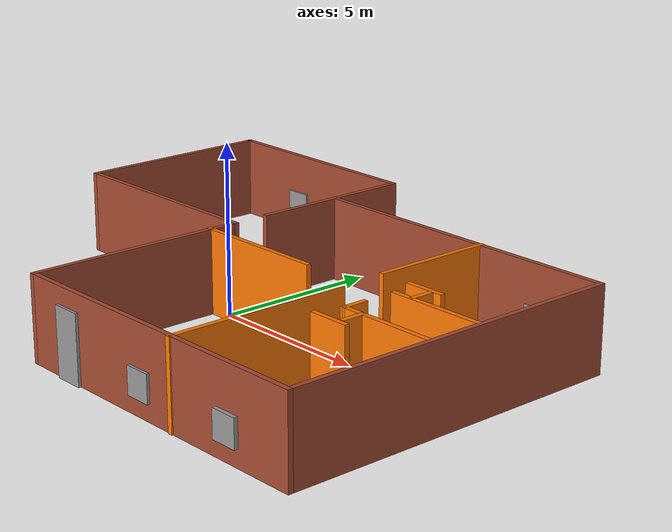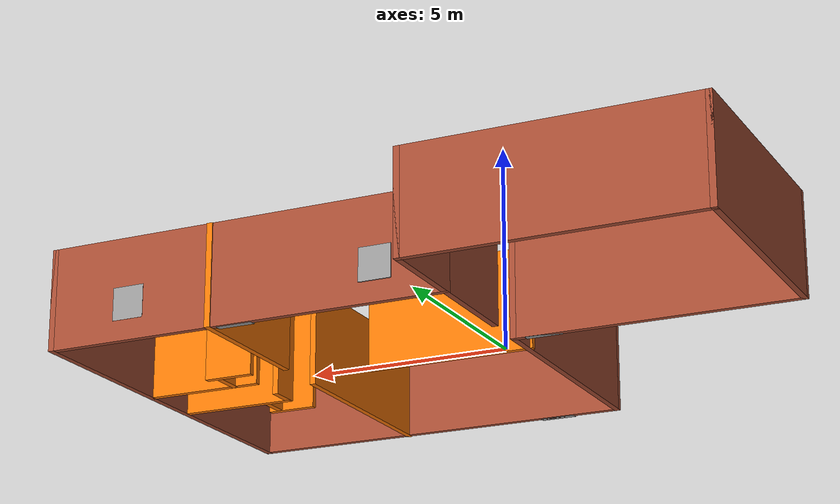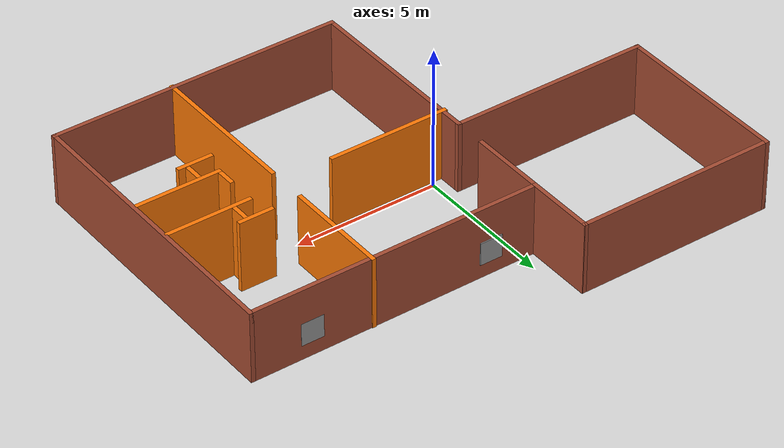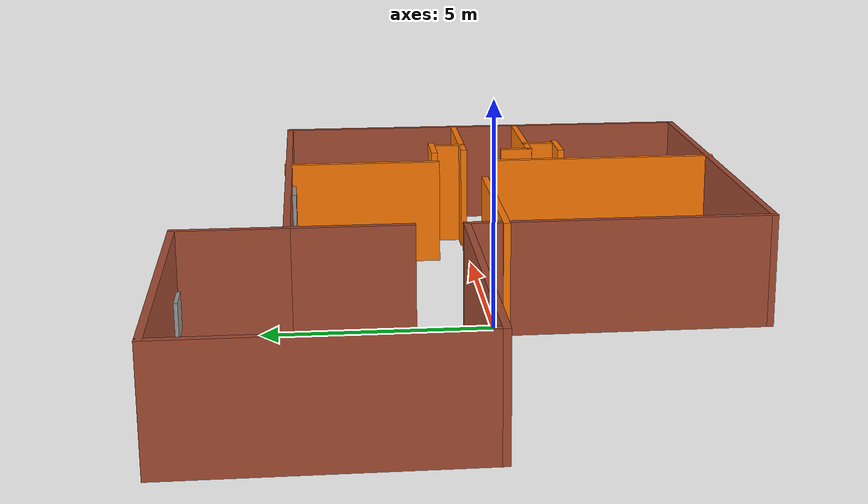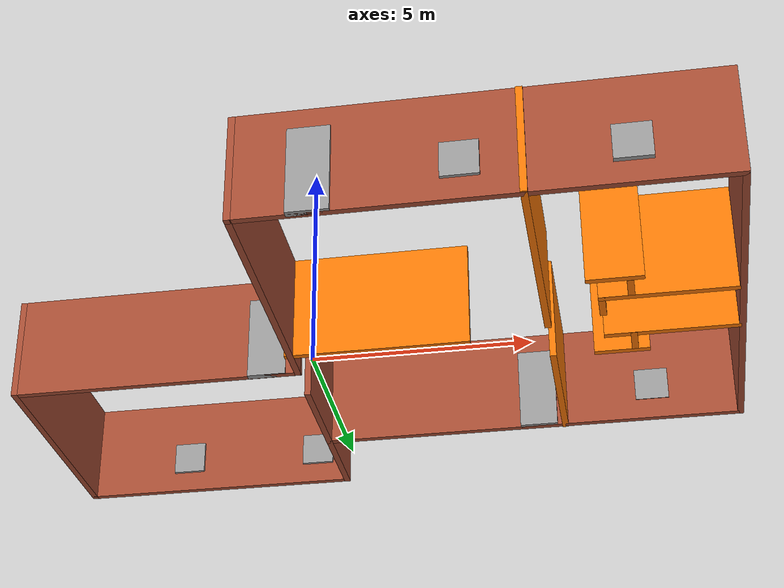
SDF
<?xml version='1.0'?>
<sdf version='1.7'>
  <model name='myBuilding'>
    <pose>1.14327 0.354044 0 0 -0 0</pose>
    <link name='Door_0'>
      <collision name='Door_0_Collision'>
        <geometry>
          <box>
            <size>0.9 0.17 2</size>
          </box>
        </geometry>
        <pose>0 0 1 0 -0 0</pose>
      </collision>
      <visual name='Door_0_Visual'>
        <pose>0 0 1 0 -0 0</pose>
        <geometry>
          <box>
            <size>0.9 0.17 2</size>
          </box>
        </geometry>
        <material>
          <script>
            <uri>file://media/materials/scripts/gazebo.material</uri>
            <name>Gazebo/Grey</name>
          </script>
        </material>
      </visual>
      <pose>3.62649 3.94143 0 0 -0 0</pose>
    </link>
    <link name='Door_1'>
      <collision name='Door_1_Collision'>
        <geometry>
          <box>
            <size>0.9 0.17 2</size>
          </box>
        </geometry>
        <pose>0 0 1 0 -0 0</pose>
      </collision>
      <visual name='Door_1_Visual'>
        <pose>0 0 1 0 -0 0</pose>
        <geometry>
          <box>
            <size>0.9 0.17 2</size>
          </box>
        </geometry>
        <material>
          <script>
            <uri>file://media/materials/scripts/gazebo.material</uri>
            <name>Gazebo/Grey</name>
          </script>
        </material>
      </visual>
      <pose>0.003082 -6.40112 0 0 -0 0</pose>
    </link>
    <link name='Door_2'>
      <collision name='Door_2_Collision'>
        <geometry>
          <box>
            <size>0.9 0.17 2</size>
          </box>
        </geometry>
        <pose>0 0 1 0 -0 0</pose>
      </collision>
      <visual name='Door_2_Visual'>
        <pose>0 0 1 0 -0 0</pose>
        <geometry>
          <box>
            <size>0.9 0.17 2</size>
          </box>
        </geometry>
        <material>
          <script>
            <uri>file://media/materials/scripts/gazebo.material</uri>
            <name>Gazebo/Grey</name>
          </script>
        </material>
      </visual>
      <pose>-2.3539 0.247665 0 0 -0 0</pose>
    </link>
    <link name='Wall_11'>
      <collision name='Wall_11_Collision'>
        <geometry>
          <box>
            <size>2.75 0.15 2.5</size>
          </box>
        </geometry>
        <pose>0 0 1.25 0 -0 0</pose>
      </collision>
      <visual name='Wall_11_Visual'>
        <pose>0 0 1.25 0 -0 0</pose>
        <geometry>
          <box>
            <size>2.75 0.15 2.5</size>
          </box>
        </geometry>
        <material>
          <script>
            <uri>file://media/materials/scripts/gazebo.material</uri>
            <name>Gazebo/Bricks</name>
          </script>
          <ambient>0.435294 0.796078 0.67451 1</ambient>
        </material>
        <meta>
          <layer>0</layer>
        </meta>
      </visual>
      <pose>-1.625 2.71877 0 0 -0 -1.5708</pose>
    </link>
    <link name='Wall_13'>
      <collision name='Wall_13_Collision'>
        <geometry>
          <box>
            <size>4.25 0.15 2.5</size>
          </box>
        </geometry>
        <pose>0 0 1.25 0 -0 0</pose>
      </collision>
      <visual name='Wall_13_Visual'>
        <pose>0 0 1.25 0 -0 0</pose>
        <geometry>
          <box>
            <size>4.25 0.15 2.5</size>
          </box>
        </geometry>
        <material>
          <script>
            <uri>file://media/materials/scripts/gazebo.material</uri>
            <name>Gazebo/Grey</name>
          </script>
          <ambient>0.996078 0.47451 0.0196078 1</ambient>
        </material>
        <meta>
          <layer>0</layer>
        </meta>
      </visual>
      <pose>0.364501 -0.561446 0 0 -0 0</pose>
    </link>
    <link name='Wall_15'>
      <collision name='Wall_15_Collision'>
        <geometry>
          <box>
            <size>3.75 0.15 2.5</size>
          </box>
        </geometry>
        <pose>0 0 1.25 0 -0 0</pose>
      </collision>
      <visual name='Wall_15_Visual'>
        <pose>0 0 1.25 0 -0 0</pose>
        <geometry>
          <box>
            <size>3.75 0.15 2.5</size>
          </box>
        </geometry>
        <material>
          <script>
            <uri>file://media/materials/scripts/gazebo.material</uri>
            <name>Gazebo/Grey</name>
          </script>
          <ambient>0.996078 0.47451 0.0196078 1</ambient>
        </material>
        <meta>
          <layer>0</layer>
        </meta>
      </visual>
      <pose>4.25971 2.24697 0 0 -0 -1.5708</pose>
    </link>
    <link name='Wall_17'>
      <collision name='Wall_17_Collision'>
        <geometry>
          <box>
            <size>5.5 0.15 2.5</size>
          </box>
        </geometry>
        <pose>0 0 1.25 0 -0 0</pose>
      </collision>
      <visual name='Wall_17_Visual'>
        <pose>0 0 1.25 0 -0 0</pose>
        <geometry>
          <box>
            <size>5.5 0.15 2.5</size>
          </box>
        </geometry>
        <material>
          <script>
            <uri>file://media/materials/scripts/gazebo.material</uri>
            <name>Gazebo/Grey</name>
          </script>
          <ambient>0.996078 0.47451 0.0196078 1</ambient>
        </material>
        <meta>
          <layer>0</layer>
        </meta>
      </visual>
      <pose>4.25971 -3.69377 0 0 -0 -1.5708</pose>
    </link>
    <link name='Wall_19'>
      <collision name='Wall_19_Collision'>
        <geometry>
          <box>
            <size>3 0.15 2.5</size>
          </box>
        </geometry>
        <pose>0 0 1.25 0 -0 0</pose>
      </collision>
      <visual name='Wall_19_Visual'>
        <pose>0 0 1.25 0 -0 0</pose>
        <geometry>
          <box>
            <size>3 0.15 2.5</size>
          </box>
        </geometry>
        <material>
          <script>
            <uri>file://media/materials/scripts/gazebo.material</uri>
            <name>Gazebo/Grey</name>
          </script>
          <ambient>0.996078 0.47451 0.0196078 1</ambient>
        </material>
        <meta>
          <layer>0</layer>
        </meta>
      </visual>
      <pose>6.91597 -2.00378 0 0 -0 0</pose>
    </link>
    <link name='Wall_2'>
      <collision name='Wall_2_Collision'>
        <geometry>
          <box>
            <size>7 0.15 2.5</size>
          </box>
        </geometry>
        <pose>0 0 1.25 0 -0 0</pose>
      </collision>
      <visual name='Wall_2_Visual'>
        <pose>0 0 1.25 0 -0 0</pose>
        <geometry>
          <box>
            <size>7 0.15 2.5</size>
          </box>
        </geometry>
        <material>
          <script>
            <uri>file://media/materials/scripts/gazebo.material</uri>
            <name>Gazebo/Bricks</name>
          </script>
          <ambient>0.435294 0.796078 0.67451 1</ambient>
        </material>
        <meta>
          <layer>0</layer>
        </meta>
      </visual>
      <pose>-5.05 6.36877 0 0 -0 0</pose>
    </link>
    <link name='Wall_21'>
      <collision name='Wall_21_Collision'>
        <geometry>
          <box>
            <size>3 0.15 2.5</size>
          </box>
        </geometry>
        <pose>0 0 1.25 0 -0 0</pose>
      </collision>
      <visual name='Wall_21_Visual'>
        <pose>0 0 1.25 0 -0 0</pose>
        <geometry>
          <box>
            <size>3 0.15 2.5</size>
          </box>
        </geometry>
        <material>
          <script>
            <uri>file://media/materials/scripts/gazebo.material</uri>
            <name>Gazebo/Grey</name>
          </script>
          <ambient>0.996078 0.47451 0.0196078 1</ambient>
        </material>
        <meta>
          <layer>0</layer>
        </meta>
      </visual>
      <pose>6.95115 -0.350374 0 0 -0 0</pose>
    </link>
    <link name='Wall_23'>
      <collision name='Wall_23_Collision'>
        <geometry>
          <box>
            <size>0.783218 0.15 2.5</size>
          </box>
        </geometry>
        <pose>0 0 1.25 0 -0 0</pose>
      </collision>
      <visual name='Wall_23_Visual'>
        <pose>0 0 1.25 0 -0 0</pose>
        <geometry>
          <box>
            <size>0.783218 0.15 2.5</size>
          </box>
        </geometry>
        <material>
          <script>
            <uri>file://media/materials/scripts/gazebo.material</uri>
            <name>Gazebo/Grey</name>
          </script>
          <ambient>0.996078 0.47451 0.0196078 1</ambient>
        </material>
        <meta>
          <layer>0</layer>
        </meta>
      </visual>
      <pose>5.49097 -1.68717 0 0 -0 -1.5708</pose>
    </link>
    <link name='Wall_25'>
      <collision name='Wall_25_Collision'>
        <geometry>
          <box>
            <size>1.25 0.15 2.5</size>
          </box>
        </geometry>
        <pose>0 0 1.25 0 -0 0</pose>
      </collision>
      <visual name='Wall_25_Visual'>
        <pose>0 0 1.25 0 -0 0</pose>
        <geometry>
          <box>
            <size>1.25 0.15 2.5</size>
          </box>
        </geometry>
        <material>
          <script>
            <uri>file://media/materials/scripts/gazebo.material</uri>
            <name>Gazebo/Grey</name>
          </script>
          <ambient>0.996078 0.47451 0.0196078 1</ambient>
        </material>
        <meta>
          <layer>0</layer>
        </meta>
      </visual>
      <pose>5.81608 -2.78697 0 0 -0 0</pose>
    </link>
    <link name='Wall_27'>
      <collision name='Wall_27_Collision'>
        <geometry>
          <box>
            <size>0.75 0.15 2.5</size>
          </box>
        </geometry>
        <pose>0 0 1.25 0 -0 0</pose>
      </collision>
      <visual name='Wall_27_Visual'>
        <pose>0 0 1.25 0 -0 0</pose>
        <geometry>
          <box>
            <size>0.75 0.15 2.5</size>
          </box>
        </geometry>
        <material>
          <script>
            <uri>file://media/materials/scripts/gazebo.material</uri>
            <name>Gazebo/Grey</name>
          </script>
          <ambient>0.996078 0.47451 0.0196078 1</ambient>
        </material>
        <meta>
          <layer>0</layer>
        </meta>
      </visual>
      <pose>6.13097 -2.32266 0 0 -0 -1.5708</pose>
    </link>
    <link name='Wall_29'>
      <collision name='Wall_29_Collision'>
        <geometry>
          <box>
            <size>1.25 0.15 2.5</size>
          </box>
        </geometry>
        <pose>0 0 1.25 0 -0 0</pose>
      </collision>
      <visual name='Wall_29_Visual'>
        <pose>0 0 1.25 0 -0 0</pose>
        <geometry>
          <box>
            <size>1.25 0.15 2.5</size>
          </box>
        </geometry>
        <material>
          <script>
            <uri>file://media/materials/scripts/gazebo.material</uri>
            <name>Gazebo/Grey</name>
          </script>
          <ambient>0.996078 0.47451 0.0196078 1</ambient>
        </material>
        <meta>
          <layer>0</layer>
        </meta>
      </visual>
      <pose>5.81608 0.411086 0 0 -0 0</pose>
    </link>
    <link name='Wall_3'>
      <collision name='Wall_3_Collision'>
        <geometry>
          <box>
            <size>2.5 0.15 2.5</size>
          </box>
        </geometry>
        <pose>0 0 1.25 0 -0 0</pose>
      </collision>
      <visual name='Wall_3_Visual'>
        <pose>0 0 1.25 0 -0 0</pose>
        <geometry>
          <box>
            <size>2.5 0.15 2.5</size>
          </box>
        </geometry>
        <material>
          <script>
            <uri>file://media/materials/scripts/gazebo.material</uri>
            <name>Gazebo/Bricks</name>
          </script>
          <ambient>0.435294 0.796078 0.67451 1</ambient>
        </material>
        <meta>
          <layer>0</layer>
        </meta>
      </visual>
      <pose>-1.625 5.19377 0 0 -0 -1.5708</pose>
    </link>
    <link name='Wall_32'>
      <collision name='Wall_32_Collision'>
        <geometry>
          <box>
            <size>0.75 0.15 2.5</size>
          </box>
        </geometry>
        <pose>0 0 1.25 0 -0 0</pose>
      </collision>
      <visual name='Wall_32_Visual'>
        <pose>0 0 1.25 0 -0 0</pose>
        <geometry>
          <box>
            <size>0.75 0.15 2.5</size>
          </box>
        </geometry>
        <material>
          <script>
            <uri>file://media/materials/scripts/gazebo.material</uri>
            <name>Gazebo/Grey</name>
          </script>
          <ambient>0.996078 0.47451 0.0196078 1</ambient>
        </material>
        <meta>
          <layer>0</layer>
        </meta>
      </visual>
      <pose>6.11085 -0.033116 0 0 -0 1.5708</pose>
    </link>
    <link name='Wall_4'>
      <collision name='Wall_4_Collision'>
        <geometry>
          <box>
            <size>10.25 0.15 2.5</size>
          </box>
        </geometry>
        <pose>0 0 1.25 0 -0 0</pose>
      </collision>
      <visual name='Wall_4_Visual'>
        <pose>0 0 1.25 0 -0 0</pose>
        <geometry>
          <box>
            <size>10.25 0.15 2.5</size>
          </box>
        </geometry>
        <material>
          <script>
            <uri>file://media/materials/scripts/gazebo.material</uri>
            <name>Gazebo/Bricks</name>
          </script>
          <ambient>0.435294 0.796078 0.67451 1</ambient>
        </material>
        <meta>
          <layer>0</layer>
        </meta>
      </visual>
      <pose>3.425 4.01877 0 0 -0 0</pose>
    </link>
    <link name='Wall_5'>
      <collision name='Wall_5_Collision'>
        <geometry>
          <box>
            <size>10.5 0.15 2.5</size>
          </box>
        </geometry>
        <pose>0 0 1.25 0 -0 0</pose>
      </collision>
      <visual name='Wall_5_Visual'>
        <pose>0 0 1.25 0 -0 0</pose>
        <geometry>
          <box>
            <size>10.5 0.15 2.5</size>
          </box>
        </geometry>
        <material>
          <script>
            <uri>file://media/materials/scripts/gazebo.material</uri>
            <name>Gazebo/Bricks</name>
          </script>
          <ambient>0.435294 0.796078 0.67451 1</ambient>
        </material>
        <meta>
          <layer>0</layer>
        </meta>
      </visual>
      <pose>8.475 -1.15623 0 0 -0 -1.5708</pose>
    </link>
    <link name='Wall_6'>
      <collision name='Wall_6_Collision'>
        <geometry>
          <box>
            <size>10.25 0.15 2.5</size>
          </box>
        </geometry>
        <pose>0 0 1.25 0 -0 0</pose>
      </collision>
      <visual name='Wall_6_Visual'>
        <pose>0 0 1.25 0 -0 0</pose>
        <geometry>
          <box>
            <size>10.25 0.15 2.5</size>
          </box>
        </geometry>
        <material>
          <script>
            <uri>file://media/materials/scripts/gazebo.material</uri>
            <name>Gazebo/Bricks</name>
          </script>
          <ambient>0.435294 0.796078 0.67451 1</ambient>
        </material>
        <meta>
          <layer>0</layer>
        </meta>
      </visual>
      <pose>3.425 -6.33123 0 0 -0 3.14159</pose>
    </link>
    <link name='Wall_7'>
      <collision name='Wall_7_Collision'>
        <geometry>
          <box>
            <size>6.75 0.15 2.5</size>
          </box>
        </geometry>
        <pose>0 0 1.25 0 -0 0</pose>
      </collision>
      <visual name='Wall_7_Visual'>
        <pose>0 0 1.25 0 -0 0</pose>
        <geometry>
          <box>
            <size>6.75 0.15 2.5</size>
          </box>
        </geometry>
        <material>
          <script>
            <uri>file://media/materials/scripts/gazebo.material</uri>
            <name>Gazebo/Bricks</name>
          </script>
          <ambient>0.435294 0.796078 0.67451 1</ambient>
        </material>
        <meta>
          <layer>0</layer>
        </meta>
      </visual>
      <pose>-1.625 -3.03123 0 0 -0 1.5708</pose>
    </link>
    <link name='Wall_8'>
      <collision name='Wall_8_Collision'>
        <geometry>
          <box>
            <size>7 0.15 2.5</size>
          </box>
        </geometry>
        <pose>0 0 1.25 0 -0 0</pose>
      </collision>
      <visual name='Wall_8_Visual'>
        <pose>0 0 1.25 0 -0 0</pose>
        <geometry>
          <box>
            <size>7 0.15 2.5</size>
          </box>
        </geometry>
        <material>
          <script>
            <uri>file://media/materials/scripts/gazebo.material</uri>
            <name>Gazebo/Bricks</name>
          </script>
          <ambient>0.435294 0.796078 0.67451 1</ambient>
        </material>
        <meta>
          <layer>0</layer>
        </meta>
      </visual>
      <pose>-5.05 0.26877 0 0 -0 3.14159</pose>
    </link>
    <link name='Wall_9'>
      <collision name='Wall_9_Collision'>
        <geometry>
          <box>
            <size>6.25 0.15 2.5</size>
          </box>
        </geometry>
        <pose>0 0 1.25 0 -0 0</pose>
      </collision>
      <visual name='Wall_9_Visual'>
        <pose>0 0 1.25 0 -0 0</pose>
        <geometry>
          <box>
            <size>6.25 0.15 2.5</size>
          </box>
        </geometry>
        <material>
          <script>
            <uri>file://media/materials/scripts/gazebo.material</uri>
            <name>Gazebo/Bricks</name>
          </script>
          <ambient>0.435294 0.796078 0.67451 1</ambient>
        </material>
        <meta>
          <layer>0</layer>
        </meta>
      </visual>
      <pose>-8.475 3.31877 0 0 -0 1.5708</pose>
    </link>
    <link name='Window_0'>
      <collision name='Window_0_Collision'>
        <geometry>
          <box>
            <size>0.8 0.17 0.8</size>
          </box>
        </geometry>
        <pose>0 0 0.4 0 -0 0</pose>
      </collision>
      <visual name='Window_0_Visual'>
        <pose>0 0 0.4 0 -0 0</pose>
        <geometry>
          <box>
            <size>0.8 0.17 0.8</size>
          </box>
        </geometry>
        <material>
          <script>
            <uri>file://media/materials/scripts/gazebo.material</uri>
            <name>Gazebo/Grey</name>
          </script>
        </material>
      </visual>
      <pose>-5.87177 6.29841 0.5 0 -0 0</pose>
    </link>
    <link name='Window_1'>
      <collision name='Window_1_Collision'>
        <geometry>
          <box>
            <size>0.8 0.17 0.8</size>
          </box>
        </geometry>
        <pose>0 0 0.4 0 -0 0</pose>
      </collision>
      <visual name='Window_1_Visual'>
        <pose>0 0 0.4 0 -0 0</pose>
        <geometry>
          <box>
            <size>0.8 0.17 0.8</size>
          </box>
        </geometry>
        <material>
          <script>
            <uri>file://media/materials/scripts/gazebo.material</uri>
            <name>Gazebo/Grey</name>
          </script>
        </material>
      </visual>
      <pose>-2.38907 6.29841 0.5 0 -0 0</pose>
    </link>
    <link name='Window_2'>
      <collision name='Window_2_Collision'>
        <geometry>
          <box>
            <size>0.8 0.17 0.8</size>
          </box>
        </geometry>
        <pose>0 0 0.4 0 -0 0</pose>
      </collision>
      <visual name='Window_2_Visual'>
        <pose>0 0 0.4 0 -0 0</pose>
        <geometry>
          <box>
            <size>0.8 0.17 0.8</size>
          </box>
        </geometry>
        <material>
          <script>
            <uri>file://media/materials/scripts/gazebo.material</uri>
            <name>Gazebo/Grey</name>
          </script>
        </material>
      </visual>
      <pose>6.40562 4.01179 0.5 0 -0 0</pose>
    </link>
    <link name='Window_3'>
      <collision name='Window_3_Collision'>
        <geometry>
          <box>
            <size>0.8 0.17 0.8</size>
          </box>
        </geometry>
        <pose>0 0 0.4 0 -0 0</pose>
      </collision>
      <visual name='Window_3_Visual'>
        <pose>0 0 0.4 0 -0 0</pose>
        <geometry>
          <box>
            <size>0.8 0.17 0.8</size>
          </box>
        </geometry>
        <material>
          <script>
            <uri>file://media/materials/scripts/gazebo.material</uri>
            <name>Gazebo/Grey</name>
          </script>
        </material>
      </visual>
      <pose>0.03826 4.04697 0.5 0 -0 0</pose>
    </link>
    <link name='Window_5'>
      <collision name='Window_5_Collision'>
        <geometry>
          <box>
            <size>0.8 0.17 0.8</size>
          </box>
        </geometry>
        <pose>0 0 0.4 0 -0 0</pose>
      </collision>
      <visual name='Window_5_Visual'>
        <pose>0 0 0.4 0 -0 0</pose>
        <geometry>
          <box>
            <size>0.8 0.17 0.8</size>
          </box>
        </geometry>
        <material>
          <script>
            <uri>file://media/materials/scripts/gazebo.material</uri>
            <name>Gazebo/Grey</name>
          </script>
        </material>
      </visual>
      <pose>3.02846 -6.40112 0.5 0 -0 0</pose>
    </link>
    <link name='Window_6'>
      <collision name='Window_6_Collision'>
        <geometry>
          <box>
            <size>0.8 0.17 0.8</size>
          </box>
        </geometry>
        <pose>0 0 0.4 0 -0 0</pose>
      </collision>
      <visual name='Window_6_Visual'>
        <pose>0 0 0.4 0 -0 0</pose>
        <geometry>
          <box>
            <size>0.8 0.17 0.8</size>
          </box>
        </geometry>
        <material>
          <script>
            <uri>file://media/materials/scripts/gazebo.material</uri>
            <name>Gazebo/Grey</name>
          </script>
        </material>
      </visual>
      <pose>6.40562 -6.4363 0.5 0 -0 0</pose>
    </link>
    <static>1</static>
  </model>
</sdf>
